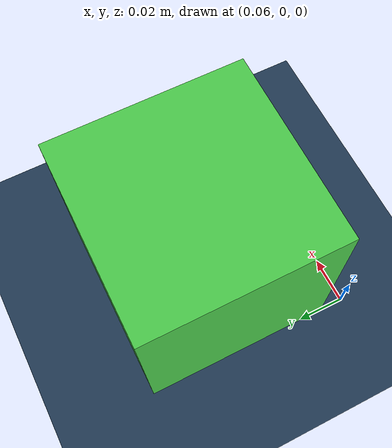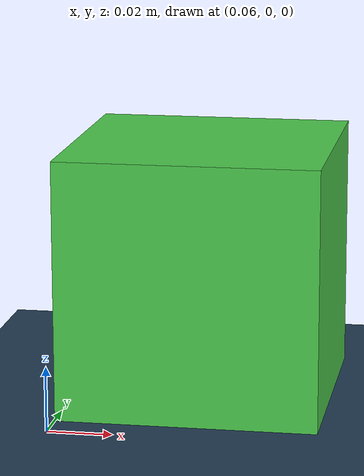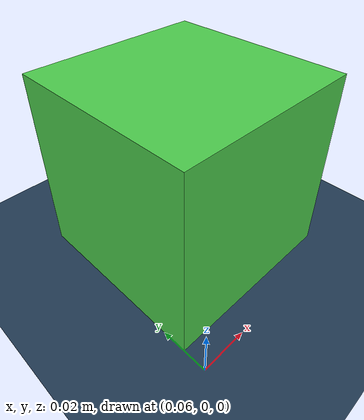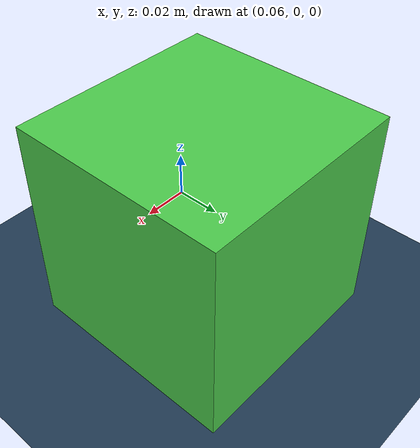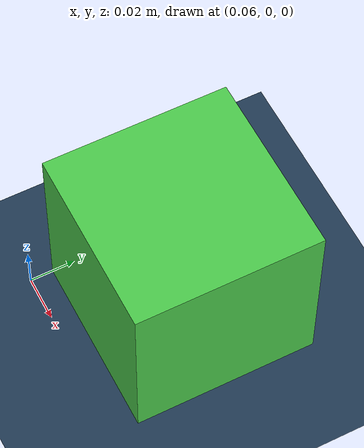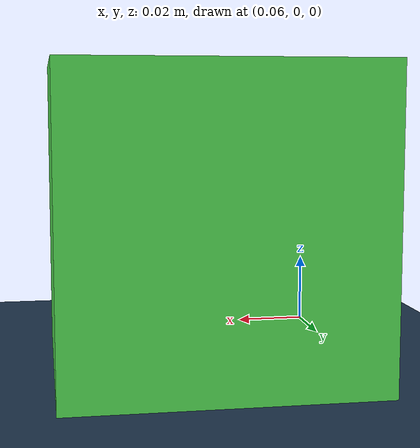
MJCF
<mujoco model="camera_frame_lab">
  <statistic center="0.1 0 0.15" extent="1"/>
  <visual>
    <global azimuth="120" elevation="-25"/>
    <headlight ambient="0.3 0.3 0.3" diffuse="0.6 0.6 0.6"/>
  </visual>
  <asset>
    <texture name="floor_texture" type="2d" builtin="checker"
             rgb1="0.08 0.16 0.24" rgb2="0.18 0.30 0.42"
             width="512" height="512"/>
    <material name="floor_material" texture="floor_texture"
              texrepeat="8 8" texuniform="true" reflectance="0.15"/>
  </asset>
  <worldbody>
    <light pos="0 -1 2" dir="0 0 -1"/>
    <geom name="floor" type="plane" size="2 2 0.1" material="floor_material"/>

    <!-- Built-in box: size contains half-lengths, so this cube is 0.08 m wide.
         No joint: keep the target fixed during coordinate-transform practice. -->
    <body name="cube" pos="0.1 0.05 0.04">
      <geom name="cube_geom" type="box" size="0.04 0.04 0.04"
            rgba="0.3 0.8 0.3 1"/>
      <site name="object_origin" size="0.003" rgba="1 0 0 0"/>
    </body>

    <!-- Camera +X right, +Y up, -Z forward; looks at the cube center. -->
    <camera name="lab_camera" mode="fixed" pos="0.1 -0.55 0.64"
            xyaxes="1 0 0 0 1 1" fovy="45"/>
  </worldbody>
</mujoco>
